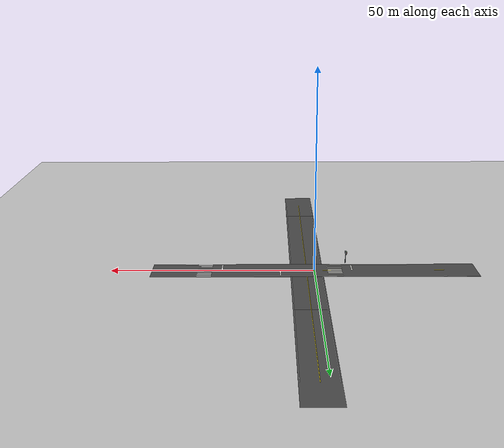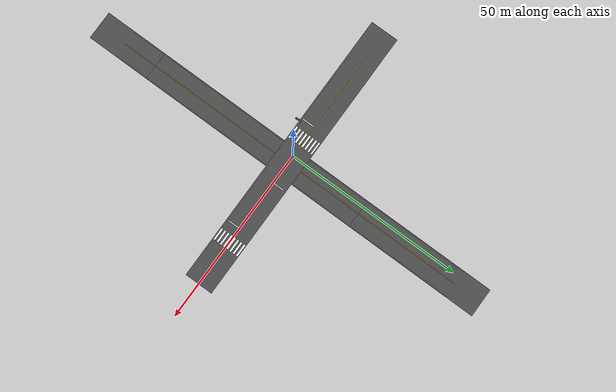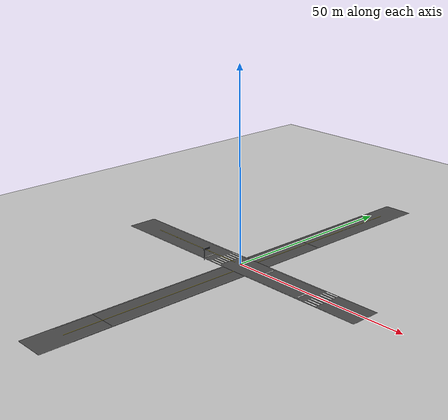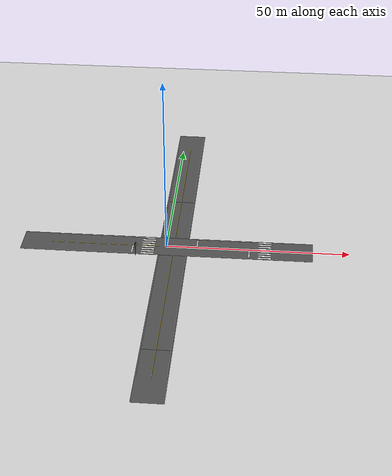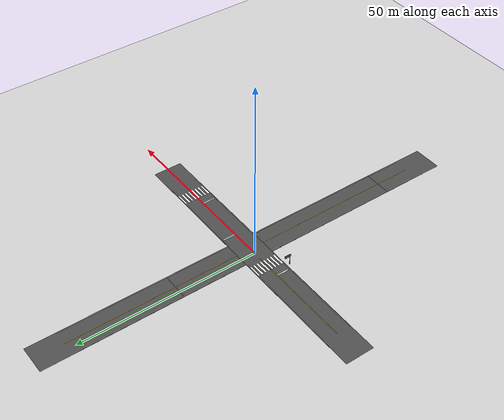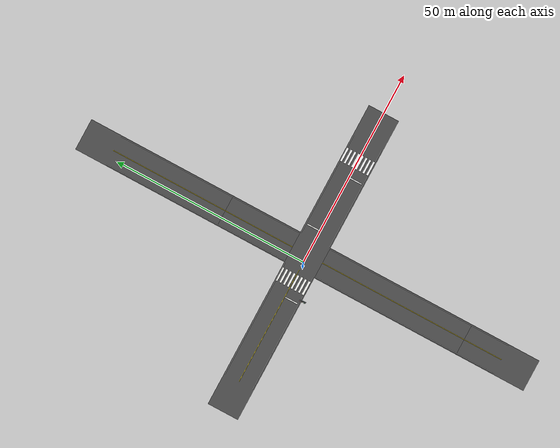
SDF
<sdf version="1.6">
 <world name="safe_drive_connected_road">
  <include><uri>model://ground_plane</uri><pose>0 0 -0.1 0 0 0</pose></include>
  <model name="road">
   <static>true</static>
   <link name="road_link">
    <collision name="collision">
     <pose>0 0 -0.05 0 0 0</pose>
     <geometry><box><size>80 8 0.1</size></box></geometry>
     <surface><friction><ode><mu>1.0</mu><mu2>1.0</mu2></ode></friction></surface>
    </collision>
    <visual name="asphalt">
     <pose>0 0 -0.045 0 0 0</pose>
     <geometry><box><size>80 8 0.01</size></box></geometry>
     <material>
      <script>
       <uri>file://safe_drive_road/materials/scripts</uri>
       <uri>file://safe_drive_road/materials/textures</uri>
       <name>SafeDrive/Asphalt</name>
      </script>
     </material>
    </visual>
    <visual name="crosswalk_bar_1">
     <pose>-5 -3.45 -0.030 0 0 0</pose>
     <geometry><box><size>3.6 0.50 0.012</size></box></geometry>
     <material><ambient>0.96 0.96 0.94 1</ambient><diffuse>0.96 0.96 0.94 1</diffuse></material>
    </visual>
    <visual name="crosswalk_bar_2">
     <pose>-5 -2.45 -0.030 0 0 0</pose>
     <geometry><box><size>3.6 0.50 0.012</size></box></geometry>
     <material><ambient>0.96 0.96 0.94 1</ambient><diffuse>0.96 0.96 0.94 1</diffuse></material>
    </visual>
    <visual name="crosswalk_bar_3">
     <pose>-5 -1.45 -0.030 0 0 0</pose>
     <geometry><box><size>3.6 0.50 0.012</size></box></geometry>
     <material><ambient>0.96 0.96 0.94 1</ambient><diffuse>0.96 0.96 0.94 1</diffuse></material>
    </visual>
    <visual name="crosswalk_bar_4">
     <pose>-5 -0.45 -0.030 0 0 0</pose>
     <geometry><box><size>3.6 0.50 0.012</size></box></geometry>
     <material><ambient>0.96 0.96 0.94 1</ambient><diffuse>0.96 0.96 0.94 1</diffuse></material>
    </visual>
    <visual name="crosswalk_bar_5">
     <pose>-5 0.55 -0.030 0 0 0</pose>
     <geometry><box><size>3.6 0.50 0.012</size></box></geometry>
     <material><ambient>0.96 0.96 0.94 1</ambient><diffuse>0.96 0.96 0.94 1</diffuse></material>
    </visual>
    <visual name="crosswalk_bar_6">
     <pose>-5 1.55 -0.030 0 0 0</pose>
     <geometry><box><size>3.6 0.50 0.012</size></box></geometry>
     <material><ambient>0.96 0.96 0.94 1</ambient><diffuse>0.96 0.96 0.94 1</diffuse></material>
    </visual>
    <visual name="crosswalk_bar_7">
     <pose>-5 2.55 -0.030 0 0 0</pose>
     <geometry><box><size>3.6 0.50 0.012</size></box></geometry>
     <material><ambient>0.96 0.96 0.94 1</ambient><diffuse>0.96 0.96 0.94 1</diffuse></material>
    </visual>
    <visual name="crosswalk_bar_8">
     <pose>-5 3.55 -0.030 0 0 0</pose>
     <geometry><box><size>3.6 0.50 0.012</size></box></geometry>
     <material><ambient>0.96 0.96 0.94 1</ambient><diffuse>0.96 0.96 0.94 1</diffuse></material>
    </visual>
    <visual name="eastbound_stop_line">
     <pose>-9.25 -1.75 -0.029 0 0 0</pose>
     <geometry><box><size>0.30 3.30 0.012</size></box></geometry>
     <material><ambient>0.96 0.96 0.94 1</ambient><diffuse>0.96 0.96 0.94 1</diffuse></material>
    </visual>
    <visual name="westbound_stop_line">
     <pose>8.4 1.75 -0.029 0 0 0</pose>
     <geometry><box><size>0.30 3.30 0.012</size></box></geometry>
     <material><ambient>0.96 0.96 0.94 1</ambient><diffuse>0.96 0.96 0.94 1</diffuse></material>
    </visual>
    <visual name="main_center_1">
     <pose>-17 0 -0.028 0 0 0</pose>
     <geometry><box><size>30 0.12 0.012</size></box></geometry>
     <material><ambient>0.95 0.85 0.10 1</ambient><diffuse>0.95 0.85 0.10 1</diffuse></material>
    </visual>
    <visual name="main_edge_1_-3.75">
     <pose>-17 -3.75 -0.028 0 0 0</pose>
     <geometry><box><size>30 0.1 0.012</size></box></geometry>
     <material><ambient>0.95 0.95 0.95 1</ambient><diffuse>0.95 0.95 0.95 1</diffuse></material>
    </visual>
    <visual name="main_edge_1_3.75">
     <pose>-17 3.75 -0.028 0 0 0</pose>
     <geometry><box><size>30 0.1 0.012</size></box></geometry>
     <material><ambient>0.95 0.95 0.95 1</ambient><diffuse>0.95 0.95 0.95 1</diffuse></material>
    </visual>
    <visual name="main_center_2">
     <pose>15.5 0 -0.028 0 0 0</pose>
     <geometry><box><size>19 0.12 0.012</size></box></geometry>
     <material><ambient>0.95 0.85 0.10 1</ambient><diffuse>0.95 0.85 0.10 1</diffuse></material>
    </visual>
    <visual name="main_edge_2_-3.75">
     <pose>15.5 -3.75 -0.028 0 0 0</pose>
     <geometry><box><size>19 0.1 0.012</size></box></geometry>
     <material><ambient>0.95 0.95 0.95 1</ambient><diffuse>0.95 0.95 0.95 1</diffuse></material>
    </visual>
    <visual name="main_edge_2_3.75">
     <pose>15.5 3.75 -0.028 0 0 0</pose>
     <geometry><box><size>19 0.1 0.012</size></box></geometry>
     <material><ambient>0.95 0.95 0.95 1</ambient><diffuse>0.95 0.95 0.95 1</diffuse></material>
    </visual>
    <visual name="main_center_3">
     <pose>30.5 0 -0.028 0 0 0</pose>
     <geometry><box><size>3 0.12 0.012</size></box></geometry>
     <material><ambient>0.95 0.85 0.10 1</ambient><diffuse>0.95 0.85 0.10 1</diffuse></material>
    </visual>
    <visual name="main_edge_3_-3.75">
     <pose>30.5 -3.75 -0.028 0 0 0</pose>
     <geometry><box><size>3 0.1 0.012</size></box></geometry>
     <material><ambient>0.95 0.95 0.95 1</ambient><diffuse>0.95 0.95 0.95 1</diffuse></material>
    </visual>
    <visual name="main_edge_3_3.75">
     <pose>30.5 3.75 -0.028 0 0 0</pose>
     <geometry><box><size>3 0.1 0.012</size></box></geometry>
     <material><ambient>0.95 0.95 0.95 1</ambient><diffuse>0.95 0.95 0.95 1</diffuse></material>
    </visual>
    <visual name="outer_crosswalk_bar_1">
     <pose>27 -3.45 -0.028 0 0 0</pose>
     <geometry><box><size>3.6 0.5 0.012</size></box></geometry>
     <material><ambient>0.95 0.95 0.95 1</ambient><diffuse>0.95 0.95 0.95 1</diffuse></material>
    </visual>
    <visual name="outer_crosswalk_bar_2">
     <pose>27 -2.45 -0.028 0 0 0</pose>
     <geometry><box><size>3.6 0.5 0.012</size></box></geometry>
     <material><ambient>0.95 0.95 0.95 1</ambient><diffuse>0.95 0.95 0.95 1</diffuse></material>
    </visual>
    <visual name="outer_crosswalk_bar_3">
     <pose>27 -1.45 -0.028 0 0 0</pose>
     <geometry><box><size>3.6 0.5 0.012</size></box></geometry>
     <material><ambient>0.95 0.95 0.95 1</ambient><diffuse>0.95 0.95 0.95 1</diffuse></material>
    </visual>
    <visual name="outer_crosswalk_bar_4">
     <pose>27 -0.45 -0.028 0 0 0</pose>
     <geometry><box><size>3.6 0.5 0.012</size></box></geometry>
     <material><ambient>0.95 0.95 0.95 1</ambient><diffuse>0.95 0.95 0.95 1</diffuse></material>
    </visual>
    <visual name="outer_crosswalk_bar_5">
     <pose>27 0.55 -0.028 0 0 0</pose>
     <geometry><box><size>3.6 0.5 0.012</size></box></geometry>
     <material><ambient>0.95 0.95 0.95 1</ambient><diffuse>0.95 0.95 0.95 1</diffuse></material>
    </visual>
    <visual name="outer_crosswalk_bar_6">
     <pose>27 1.55 -0.028 0 0 0</pose>
     <geometry><box><size>3.6 0.5 0.012</size></box></geometry>
     <material><ambient>0.95 0.95 0.95 1</ambient><diffuse>0.95 0.95 0.95 1</diffuse></material>
    </visual>
    <visual name="outer_crosswalk_bar_7">
     <pose>27 2.55 -0.028 0 0 0</pose>
     <geometry><box><size>3.6 0.5 0.012</size></box></geometry>
     <material><ambient>0.95 0.95 0.95 1</ambient><diffuse>0.95 0.95 0.95 1</diffuse></material>
    </visual>
    <visual name="outer_crosswalk_bar_8">
     <pose>27 3.55 -0.028 0 0 0</pose>
     <geometry><box><size>3.6 0.5 0.012</size></box></geometry>
     <material><ambient>0.95 0.95 0.95 1</ambient><diffuse>0.95 0.95 0.95 1</diffuse></material>
    </visual>
    <visual name="outer_eastbound_yield_line">
     <pose>22.75 -1.75 -0.028 0 0 0</pose>
     <geometry><box><size>0.3 3.3 0.012</size></box></geometry>
     <material><ambient>0.95 0.95 0.95 1</ambient><diffuse>0.95 0.95 0.95 1</diffuse></material>
    </visual>
   </link>
  </model>
  <model name="cross_road">
   <static>true</static>
   <link name="surface">
    <collision name="north_road_collision">
     <pose>2 13 -0.05 0 0 0</pose>
     <geometry><box><size>8 18 0.1</size></box></geometry>
    </collision>
    <collision name="south_road_collision">
     <pose>2 -23 -0.05 0 0 0</pose>
     <geometry><box><size>8 38 0.1</size></box></geometry>
    </collision>
    <visual name="north_asphalt">
     <pose>2 13 -0.045 0 0 0</pose>
     <geometry><box><size>8 18 0.01</size></box></geometry>
     <material>
      <script>
       <uri>file://safe_drive_road/materials/scripts</uri>
       <uri>file://safe_drive_road/materials/textures</uri>
       <name>SafeDrive/Asphalt</name>
      </script>
     </material>
    </visual>
    <visual name="south_asphalt">
     <pose>2 -23 -0.045 0 0 0</pose>
     <geometry><box><size>8 38 0.01</size></box></geometry>
     <material>
      <script>
       <uri>file://safe_drive_road/materials/scripts</uri>
       <uri>file://safe_drive_road/materials/textures</uri>
       <name>SafeDrive/Asphalt</name>
      </script>
     </material>
    </visual>
    <collision name="north_extension_collision">
     <pose>2 41 -0.05 0 0 0</pose>
     <geometry><box><size>8 38 0.1</size></box></geometry>
    </collision>
    <visual name="north_extension_asphalt">
     <pose>2 41 -0.045 0 0 0</pose>
     <geometry><box><size>8 38 0.01</size></box></geometry>
     <material>
      <script>
       <uri>file://safe_drive_road/materials/scripts</uri>
       <uri>file://safe_drive_road/materials/textures</uri>
       <name>SafeDrive/Asphalt</name>
      </script>
     </material>
    </visual>
    <collision name="south_extension_collision">
     <pose>2 -51 -0.05 0 0 0</pose>
     <geometry><box><size>8 18 0.1</size></box></geometry>
    </collision>
    <visual name="south_extension_asphalt">
     <pose>2 -51 -0.045 0 0 0</pose>
     <geometry><box><size>8 18 0.01</size></box></geometry>
     <material>
      <script>
       <uri>file://safe_drive_road/materials/scripts</uri>
       <uri>file://safe_drive_road/materials/textures</uri>
       <name>SafeDrive/Asphalt</name>
      </script>
     </material>
    </visual>
    <visual name="central_center_1">
     <pose>2 -28 -0.028 0 0 0</pose>
     <geometry><box><size>0.12 48 0.012</size></box></geometry>
     <material><ambient>0.95 0.85 0.10 1</ambient><diffuse>0.95 0.85 0.10 1</diffuse></material>
    </visual>
    <visual name="central_edge_1_-3.75">
     <pose>-1.75 -28 -0.028 0 0 0</pose>
     <geometry><box><size>0.1 48 0.012</size></box></geometry>
     <material><ambient>0.95 0.95 0.95 1</ambient><diffuse>0.95 0.95 0.95 1</diffuse></material>
    </visual>
    <visual name="central_edge_1_3.75">
     <pose>5.75 -28 -0.028 0 0 0</pose>
     <geometry><box><size>0.1 48 0.012</size></box></geometry>
     <material><ambient>0.95 0.95 0.95 1</ambient><diffuse>0.95 0.95 0.95 1</diffuse></material>
    </visual>
    <visual name="central_center_2">
     <pose>2 28 -0.028 0 0 0</pose>
     <geometry><box><size>0.12 48 0.012</size></box></geometry>
     <material><ambient>0.95 0.85 0.10 1</ambient><diffuse>0.95 0.85 0.10 1</diffuse></material>
    </visual>
    <visual name="central_edge_2_-3.75">
     <pose>-1.75 28 -0.028 0 0 0</pose>
     <geometry><box><size>0.1 48 0.012</size></box></geometry>
     <material><ambient>0.95 0.95 0.95 1</ambient><diffuse>0.95 0.95 0.95 1</diffuse></material>
    </visual>
    <visual name="central_edge_2_3.75">
     <pose>5.75 28 -0.028 0 0 0</pose>
     <geometry><box><size>0.1 48 0.012</size></box></geometry>
     <material><ambient>0.95 0.95 0.95 1</ambient><diffuse>0.95 0.95 0.95 1</diffuse></material>
    </visual>
   </link>
  </model>
  <model name="vehicle_signal_fixture">
   <static>true</static>
   <link name="post">
    <visual name="pole">
     <pose>-8.0 -4.72 1.48 0 0 0</pose>
     <geometry><cylinder><radius>0.075</radius><length>2.96</length></cylinder></geometry>
     <material><ambient>0.20 0.23 0.25 1</ambient><diffuse>0.31 0.34 0.36 1</diffuse></material>
    </visual>
    <visual name="housing">
     <pose>-8.0 -4.10 3.00 0 0 0</pose>
     <geometry><box><size>0.30 1.78 0.52</size></box></geometry>
     <material><ambient>0.035 0.045 0.05 1</ambient><diffuse>0.065 0.075 0.085 1</diffuse></material>
    </visual>
    <visual name="bracket">
     <pose>-8.0 -4.43 2.98 0 0 0</pose>
     <geometry><box><size>0.12 0.67 0.10</size></box></geometry>
     <material><ambient>0.20 0.23 0.25 1</ambient><diffuse>0.31 0.34 0.36 1</diffuse></material>
    </visual>
    <visual name="red_lens">
     <pose>-8.19 -3.55 3.00 0 0 0</pose>
     <geometry><sphere><radius>0.18</radius></sphere></geometry>
     <material><ambient>0.18 0.025 0.02 1</ambient><diffuse>0.18 0.025 0.02 1</diffuse></material>
    </visual>
    <visual name="yellow_lens">
     <pose>-8.19 -4.1 3.00 0 0 0</pose>
     <geometry><sphere><radius>0.18</radius></sphere></geometry>
     <material><ambient>0.18 0.11 0.015 1</ambient><diffuse>0.18 0.11 0.015 1</diffuse></material>
    </visual>
    <visual name="green_lens">
     <pose>-8.19 -4.65 3.00 0 0 0</pose>
     <geometry><sphere><radius>0.18</radius></sphere></geometry>
     <material><ambient>0.015 0.15 0.025 1</ambient><diffuse>0.015 0.15 0.025 1</diffuse></material>
    </visual>
   </link>
  </model>
 </world>
</sdf>
